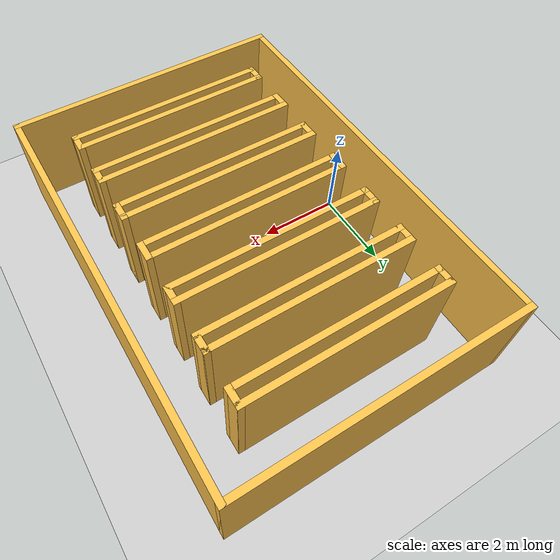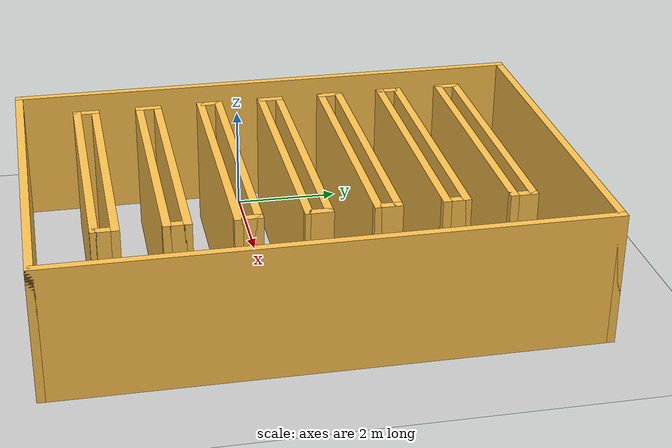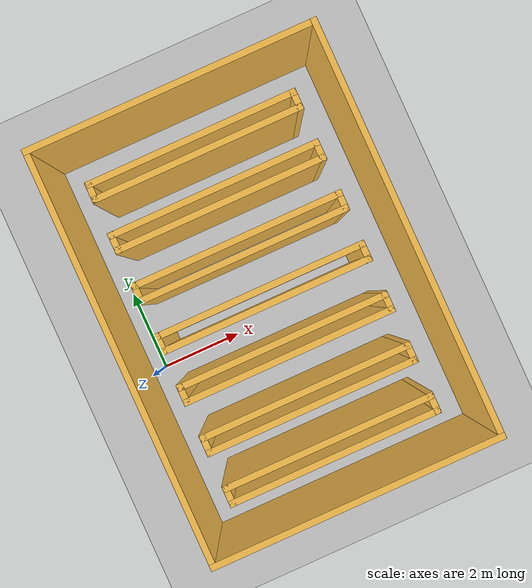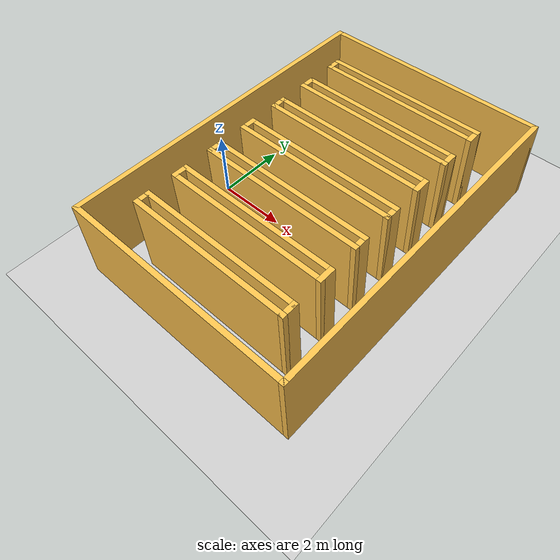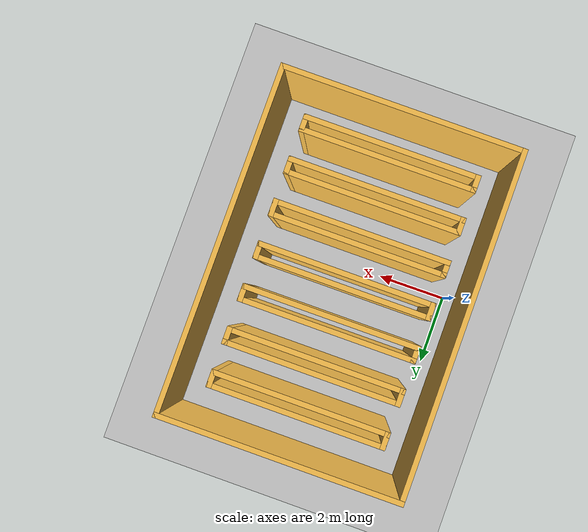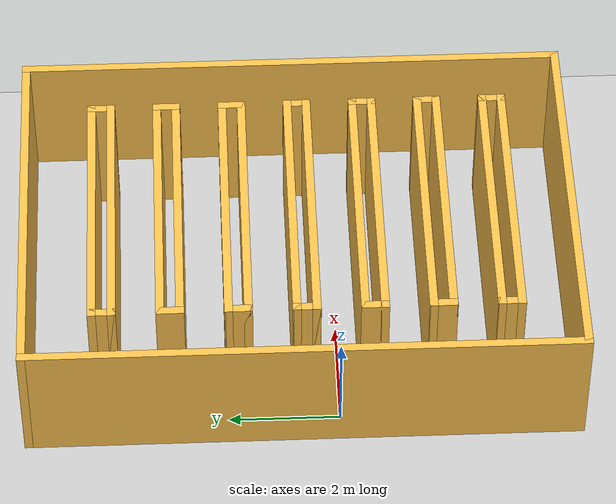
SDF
<sdf version="1.7">
 <world name="default">
  <light name="sun" type="directional">
   <pose>0 0 10 0 -0 0</pose>
   <diffuse>0.8 0.8 0.8 1</diffuse>
   <specular>0.2 0.2 0.2 1</specular>
   <attenuation>
    <range>1000</range>
    <constant>0.9</constant>
    <linear>0.01</linear>
    <quadratic>0.001</quadratic>
   </attenuation>
   <direction>-0.5 0.1 -0.9</direction>
   <spot><inner_angle>0</inner_angle><outer_angle>0</outer_angle><falloff>0</falloff></spot>
  </light>
  <model name="ground_plane">
   <static>1</static>
   <link name="link">
    <collision name="collision">
     <geometry><plane><normal>0 0 1</normal><size>100 100</size></plane></geometry>
     <surface><friction><ode><mu>100</mu><mu2>50</mu2></ode></friction></surface>
    </collision>
    <visual name="visual">
     <cast_shadows>0</cast_shadows>
     <geometry><plane><normal>0 0 1</normal><size>100 100</size></plane></geometry>
     <material>
      <script><uri>file://media/materials/scripts/gazebo.material</uri><name>Gazebo/Grey</name></script>
     </material>
    </visual>
   </link>
  </model>
  <gravity>0 0 -9.8</gravity>
  <magnetic_field>6e-06 2.3e-05 -4.2e-05</magnetic_field>
  <atmosphere type="adiabatic"/>
  <physics type="ode">
   <max_step_size>0.001</max_step_size>
   <real_time_factor>1</real_time_factor>
   <real_time_update_rate>1000</real_time_update_rate>
  </physics>
  <scene><ambient>0.4 0.4 0.4 1</ambient><background>0.7 0.7 0.7 1</background><shadows>1</shadows></scene>
  <spherical_coordinates>
   <surface_model>EARTH_WGS84</surface_model>
   <latitude_deg>0</latitude_deg>
   <longitude_deg>0</longitude_deg>
   <elevation>0</elevation>
   <heading_deg>0</heading_deg>
  </spherical_coordinates>
  <model name="Simple_house">
   <pose>2.85 0.65 0 0 -0 1.57079</pose>
   <link name="Wall_10">
    <collision name="Wall_10_Collision">
     <geometry><box><size>7 0.15 2.5</size></box></geometry>
     <pose>0 0 1.25 0 -0 0</pose>
    </collision>
    <visual name="Wall_10_Visual">
     <pose>0 0 1.25 0 -0 0</pose>
     <geometry><box><size>7 0.15 2.5</size></box></geometry>
     <material>
      <script><uri>file://media/materials/scripts/gazebo.material</uri><name>Gazebo/Grey</name></script>
      <ambient>1 0.764706 0.305882 1</ambient>
     </material>
     <meta><layer>0</layer></meta>
    </visual>
    <pose>-4.925 -0.16685 0 0 -0 1.5708</pose>
   </link>
   <link name="Wall_17">
    <collision name="Wall_17_Collision">
     <geometry><box><size>10 0.15 2.5</size></box></geometry>
     <pose>0 0 1.25 0 -0 0</pose>
    </collision>
    <visual name="Wall_17_Visual">
     <pose>0 0 1.25 0 -0 0</pose>
     <geometry><box><size>10 0.15 2.5</size></box></geometry>
     <material>
      <script><uri>file://media/materials/scripts/gazebo.material</uri><name>Gazebo/Grey</name></script>
      <ambient>1 0.764706 0.305882 1</ambient>
     </material>
     <meta><layer>0</layer></meta>
    </visual>
    <pose>0 -3.59185 0 0 -0 0</pose>
   </link>
   <link name="Wall_18">
    <collision name="Wall_18_Collision">
     <geometry><box><size>7 0.15 2.5</size></box></geometry>
     <pose>0 0 1.25 0 -0 0</pose>
    </collision>
    <visual name="Wall_18_Visual">
     <pose>0 0 1.25 0 -0 0</pose>
     <geometry><box><size>7 0.15 2.5</size></box></geometry>
     <material>
      <script><uri>file://media/materials/scripts/gazebo.material</uri><name>Gazebo/Grey</name></script>
      <ambient>1 0.764706 0.305882 1</ambient>
     </material>
     <meta><layer>0</layer></meta>
    </visual>
    <pose>4.925 -0.16685 0 0 -0 1.5708</pose>
   </link>
   <link name="Wall_19">
    <collision name="Wall_19_Collision">
     <geometry><box><size>10 0.15 2.5</size></box></geometry>
     <pose>0 0 1.25 0 -0 0</pose>
    </collision>
    <visual name="Wall_19_Visual">
     <pose>0 0 1.25 0 -0 0</pose>
     <geometry><box><size>10 0.15 2.5</size></box></geometry>
     <material>
      <script><uri>file://media/materials/scripts/gazebo.material</uri><name>Gazebo/Grey</name></script>
      <ambient>1 0.764706 0.305882 1</ambient>
     </material>
     <meta><layer>0</layer></meta>
    </visual>
    <pose>0 3.25815 0 0 -0 3.14159</pose>
   </link>
   <link name="Wall_27">
    <collision name="Wall_27_Collision">
     <geometry><box><size>5 0.15 2.5</size></box></geometry>
     <pose>0 0 1.25 0 -0 0</pose>
    </collision>
    <visual name="Wall_27_Visual">
     <pose>0 0 1.25 0 -0 0</pose>
     <geometry><box><size>5 0.15 2.5</size></box></geometry>
     <material>
      <script><uri>file://media/materials/scripts/gazebo.material</uri><name>Gazebo/Grey</name></script>
      <ambient>1 0.764706 0.305882 1</ambient>
     </material>
     <meta><layer>0</layer></meta>
    </visual>
    <pose>3.70907 -0.11251 0 0 -0 -1.5708</pose>
   </link>
   <link name="Wall_28">
    <collision name="Wall_28_Collision">
     <geometry><box><size>0.5 0.15 2.5</size></box></geometry>
     <pose>0 0 1.25 0 -0 0</pose>
    </collision>
    <visual name="Wall_28_Visual">
     <pose>0 0 1.25 0 -0 0</pose>
     <geometry><box><size>0.5 0.15 2.5</size></box></geometry>
     <material>
      <script><uri>file://media/materials/scripts/gazebo.material</uri><name>Gazebo/Grey</name></script>
      <ambient>1 0.764706 0.305882 1</ambient>
     </material>
     <meta><layer>0</layer></meta>
    </visual>
    <pose>3.53407 -2.53751 0 0 -0 3.14159</pose>
   </link>
   <link name="Wall_29">
    <collision name="Wall_29_Collision">
     <geometry><box><size>5 0.15 2.5</size></box></geometry>
     <pose>0 0 1.25 0 -0 0</pose>
    </collision>
    <visual name="Wall_29_Visual">
     <pose>0 0 1.25 0 -0 0</pose>
     <geometry><box><size>5 0.15 2.5</size></box></geometry>
     <material>
      <script><uri>file://media/materials/scripts/gazebo.material</uri><name>Gazebo/Grey</name></script>
      <ambient>1 0.764706 0.305882 1</ambient>
     </material>
     <meta><layer>0</layer></meta>
    </visual>
    <pose>3.35907 -0.11251 0 0 -0 1.5708</pose>
   </link>
   <link name="Wall_31">
    <collision name="Wall_31_Collision">
     <geometry><box><size>0.5 0.15 2.5</size></box></geometry>
     <pose>0 0 1.25 0 -0 0</pose>
    </collision>
    <visual name="Wall_31_Visual">
     <pose>0 0 1.25 0 -0 0</pose>
     <geometry><box><size>0.5 0.15 2.5</size></box></geometry>
     <material>
      <script><uri>file://media/materials/scripts/gazebo.material</uri><name>Gazebo/Grey</name></script>
      <ambient>1 0.764706 0.305882 1</ambient>
     </material>
     <meta><layer>0</layer></meta>
    </visual>
    <pose>3.53407 2.31249 0 0 -0 3.14159</pose>
   </link>
   <link name="Wall_33">
    <collision name="Wall_33_Collision">
     <geometry><box><size>5 0.15 2.5</size></box></geometry>
     <pose>0 0 1.25 0 -0 0</pose>
    </collision>
    <visual name="Wall_33_Visual">
     <pose>0 0 1.25 0 -0 0</pose>
     <geometry><box><size>5 0.15 2.5</size></box></geometry>
     <material>
      <script><uri>file://media/materials/scripts/gazebo.material</uri><name>Gazebo/Grey</name></script>
      <ambient>1 0.764706 0.305882 1</ambient>
     </material>
     <meta><layer>0</layer></meta>
    </visual>
    <pose>2.50907 -0.11251 0 0 -0 -1.5708</pose>
   </link>
   <link name="Wall_34">
    <collision name="Wall_34_Collision">
     <geometry><box><size>0.5 0.15 2.5</size></box></geometry>
     <pose>0 0 1.25 0 -0 0</pose>
    </collision>
    <visual name="Wall_34_Visual">
     <pose>0 0 1.25 0 -0 0</pose>
     <geometry><box><size>0.5 0.15 2.5</size></box></geometry>
     <material>
      <script><uri>file://media/materials/scripts/gazebo.material</uri><name>Gazebo/Grey</name></script>
      <ambient>1 0.764706 0.305882 1</ambient>
     </material>
     <meta><layer>0</layer></meta>
    </visual>
    <pose>2.33407 -2.53751 0 0 -0 3.14159</pose>
   </link>
   <link name="Wall_35">
    <collision name="Wall_35_Collision">
     <geometry><box><size>5 0.15 2.5</size></box></geometry>
     <pose>0 0 1.25 0 -0 0</pose>
    </collision>
    <visual name="Wall_35_Visual">
     <pose>0 0 1.25 0 -0 0</pose>
     <geometry><box><size>5 0.15 2.5</size></box></geometry>
     <material>
      <script><uri>file://media/materials/scripts/gazebo.material</uri><name>Gazebo/Grey</name></script>
      <ambient>1 0.764706 0.305882 1</ambient>
     </material>
     <meta><layer>0</layer></meta>
    </visual>
    <pose>2.15907 -0.11251 0 0 -0 1.5708</pose>
   </link>
   <link name="Wall_36">
    <collision name="Wall_36_Collision">
     <geometry><box><size>0.5 0.15 2.5</size></box></geometry>
     <pose>0 0 1.25 0 -0 0</pose>
    </collision>
    <visual name="Wall_36_Visual">
     <pose>0 0 1.25 0 -0 0</pose>
     <geometry><box><size>0.5 0.15 2.5</size></box></geometry>
     <material>
      <script><uri>file://media/materials/scripts/gazebo.material</uri><name>Gazebo/Grey</name></script>
      <ambient>1 0.764706 0.305882 1</ambient>
     </material>
     <meta><layer>0</layer></meta>
    </visual>
    <pose>2.33407 2.31249 0 0 -0 0</pose>
   </link>
   <link name="Wall_39">
    <collision name="Wall_39_Collision">
     <geometry><box><size>5 0.15 2.5</size></box></geometry>
     <pose>0 0 1.25 0 -0 0</pose>
    </collision>
    <visual name="Wall_39_Visual">
     <pose>0 0 1.25 0 -0 0</pose>
     <geometry><box><size>5 0.15 2.5</size></box></geometry>
     <material>
      <script><uri>file://media/materials/scripts/gazebo.material</uri><name>Gazebo/Grey</name></script>
      <ambient>1 0.764706 0.305882 1</ambient>
     </material>
     <meta><layer>0</layer></meta>
    </visual>
    <pose>1.30907 -0.11251 0 0 -0 -1.5708</pose>
   </link>
   <link name="Wall_40">
    <collision name="Wall_40_Collision">
     <geometry><box><size>0.5 0.15 2.5</size></box></geometry>
     <pose>0 0 1.25 0 -0 0</pose>
    </collision>
    <visual name="Wall_40_Visual">
     <pose>0 0 1.25 0 -0 0</pose>
     <geometry><box><size>0.5 0.15 2.5</size></box></geometry>
     <material>
      <script><uri>file://media/materials/scripts/gazebo.material</uri><name>Gazebo/Grey</name></script>
      <ambient>1 0.764706 0.305882 1</ambient>
     </material>
     <meta><layer>0</layer></meta>
    </visual>
    <pose>1.13407 -2.53751 0 0 -0 3.14159</pose>
   </link>
   <link name="Wall_41">
    <collision name="Wall_41_Collision">
     <geometry><box><size>5 0.15 2.5</size></box></geometry>
     <pose>0 0 1.25 0 -0 0</pose>
    </collision>
    <visual name="Wall_41_Visual">
     <pose>0 0 1.25 0 -0 0</pose>
     <geometry><box><size>5 0.15 2.5</size></box></geometry>
     <material>
      <script><uri>file://media/materials/scripts/gazebo.material</uri><name>Gazebo/Grey</name></script>
      <ambient>1 0.764706 0.305882 1</ambient>
     </material>
     <meta><layer>0</layer></meta>
    </visual>
    <pose>0.95907 -0.11251 0 0 -0 1.5708</pose>
   </link>
   <link name="Wall_42">
    <collision name="Wall_42_Collision">
     <geometry><box><size>0.5 0.15 2.5</size></box></geometry>
     <pose>0 0 1.25 0 -0 0</pose>
    </collision>
    <visual name="Wall_42_Visual">
     <pose>0 0 1.25 0 -0 0</pose>
     <geometry><box><size>0.5 0.15 2.5</size></box></geometry>
     <material>
      <script><uri>file://media/materials/scripts/gazebo.material</uri><name>Gazebo/Grey</name></script>
      <ambient>1 0.764706 0.305882 1</ambient>
     </material>
     <meta><layer>0</layer></meta>
    </visual>
    <pose>1.13407 2.31249 0 0 -0 0</pose>
   </link>
   <link name="Wall_45">
    <collision name="Wall_45_Collision">
     <geometry><box><size>5 0.15 2.5</size></box></geometry>
     <pose>0 0 1.25 0 -0 0</pose>
    </collision>
    <visual name="Wall_45_Visual">
     <pose>0 0 1.25 0 -0 0</pose>
     <geometry><box><size>5 0.15 2.5</size></box></geometry>
     <material>
      <script><uri>file://media/materials/scripts/gazebo.material</uri><name>Gazebo/Grey</name></script>
      <ambient>1 0.764706 0.305882 1</ambient>
     </material>
     <meta><layer>0</layer></meta>
    </visual>
    <pose>0.10907 -0.11251 0 0 -0 -1.5708</pose>
   </link>
   <link name="Wall_49">
    <collision name="Wall_49_Collision">
     <geometry><box><size>0.5 0.15 2.5</size></box></geometry>
     <pose>0 0 1.25 0 -0 0</pose>
    </collision>
    <visual name="Wall_49_Visual">
     <pose>0 0 1.25 0 -0 0</pose>
     <geometry><box><size>0.5 0.15 2.5</size></box></geometry>
     <material>
      <script><uri>file://media/materials/scripts/gazebo.material</uri><name>Gazebo/Grey</name></script>
      <ambient>1 0.764706 0.305882 1</ambient>
     </material>
     <meta><layer>0</layer></meta>
    </visual>
    <pose>-0.06593 -2.53751 0 0 -0 3.14159</pose>
   </link>
   <link name="Wall_50">
    <collision name="Wall_50_Collision">
     <geometry><box><size>5 0.15 2.5</size></box></geometry>
     <pose>0 0 1.25 0 -0 0</pose>
    </collision>
    <visual name="Wall_50_Visual">
     <pose>0 0 1.25 0 -0 0</pose>
     <geometry><box><size>5 0.15 2.5</size></box></geometry>
     <material>
      <script><uri>file://media/materials/scripts/gazebo.material</uri><name>Gazebo/Grey</name></script>
      <ambient>1 0.764706 0.305882 1</ambient>
     </material>
     <meta><layer>0</layer></meta>
    </visual>
    <pose>-0.24093 -0.11251 0 0 -0 1.5708</pose>
   </link>
   <link name="Wall_51">
    <collision name="Wall_51_Collision">
     <geometry><box><size>0.5 0.15 2.5</size></box></geometry>
     <pose>0 0 1.25 0 -0 0</pose>
    </collision>
    <visual name="Wall_51_Visual">
     <pose>0 0 1.25 0 -0 0</pose>
     <geometry><box><size>0.5 0.15 2.5</size></box></geometry>
     <material>
      <script><uri>file://media/materials/scripts/gazebo.material</uri><name>Gazebo/Grey</name></script>
      <ambient>1 0.764706 0.305882 1</ambient>
     </material>
     <meta><layer>0</layer></meta>
    </visual>
    <pose>-0.06593 2.31249 0 0 -0 0</pose>
   </link>
   <link name="Wall_54">
    <collision name="Wall_54_Collision">
     <geometry><box><size>5 0.15 2.5</size></box></geometry>
     <pose>0 0 1.25 0 -0 0</pose>
    </collision>
    <visual name="Wall_54_Visual">
     <pose>0 0 1.25 0 -0 0</pose>
     <geometry><box><size>5 0.15 2.5</size></box></geometry>
     <material>
      <script><uri>file://media/materials/scripts/gazebo.material</uri><name>Gazebo/Grey</name></script>
      <ambient>1 0.764706 0.305882 1</ambient>
     </material>
     <meta><layer>0</layer></meta>
    </visual>
    <pose>-1.09093 -0.11251 0 0 -0 -1.5708</pose>
   </link>
   <link name="Wall_55">
    <collision name="Wall_55_Collision">
     <geometry><box><size>0.5 0.15 2.5</size></box></geometry>
     <pose>0 0 1.25 0 -0 0</pose>
    </collision>
    <visual name="Wall_55_Visual">
     <pose>0 0 1.25 0 -0 0</pose>
     <geometry><box><size>0.5 0.15 2.5</size></box></geometry>
     <material>
      <script><uri>file://media/materials/scripts/gazebo.material</uri><name>Gazebo/Grey</name></script>
      <ambient>1 0.764706 0.305882 1</ambient>
     </material>
     <meta><layer>0</layer></meta>
    </visual>
    <pose>-1.26593 -2.53751 0 0 -0 3.14159</pose>
   </link>
   <link name="Wall_56">
    <collision name="Wall_56_Collision">
     <geometry><box><size>5 0.15 2.5</size></box></geometry>
     <pose>0 0 1.25 0 -0 0</pose>
    </collision>
    <visual name="Wall_56_Visual">
     <pose>0 0 1.25 0 -0 0</pose>
     <geometry><box><size>5 0.15 2.5</size></box></geometry>
     <material>
      <script><uri>file://media/materials/scripts/gazebo.material</uri><name>Gazebo/Grey</name></script>
      <ambient>1 0.764706 0.305882 1</ambient>
     </material>
     <meta><layer>0</layer></meta>
    </visual>
    <pose>-1.44093 -0.11251 0 0 -0 1.5708</pose>
   </link>
   <link name="Wall_57">
    <collision name="Wall_57_Collision">
     <geometry><box><size>0.5 0.15 2.5</size></box></geometry>
     <pose>0 0 1.25 0 -0 0</pose>
    </collision>
    <visual name="Wall_57_Visual">
     <pose>0 0 1.25 0 -0 0</pose>
     <geometry><box><size>0.5 0.15 2.5</size></box></geometry>
     <material>
      <script><uri>file://media/materials/scripts/gazebo.material</uri><name>Gazebo/Grey</name></script>
      <ambient>1 0.764706 0.305882 1</ambient>
     </material>
     <meta><layer>0</layer></meta>
    </visual>
    <pose>-1.26593 2.31249 0 0 -0 0</pose>
   </link>
   <link name="Wall_60">
    <collision name="Wall_60_Collision">
     <geometry><box><size>5 0.15 2.5</size></box></geometry>
     <pose>0 0 1.25 0 -0 0</pose>
    </collision>
    <visual name="Wall_60_Visual">
     <pose>0 0 1.25 0 -0 0</pose>
     <geometry><box><size>5 0.15 2.5</size></box></geometry>
     <material>
      <script><uri>file://media/materials/scripts/gazebo.material</uri><name>Gazebo/Grey</name></script>
      <ambient>1 0.764706 0.305882 1</ambient>
     </material>
     <meta><layer>0</layer></meta>
    </visual>
    <pose>-2.29093 -0.11251 0 0 -0 -1.5708</pose>
   </link>
   <link name="Wall_61">
    <collision name="Wall_61_Collision">
     <geometry><box><size>0.5 0.15 2.5</size></box></geometry>
     <pose>0 0 1.25 0 -0 0</pose>
    </collision>
    <visual name="Wall_61_Visual">
     <pose>0 0 1.25 0 -0 0</pose>
     <geometry><box><size>0.5 0.15 2.5</size></box></geometry>
     <material>
      <script><uri>file://media/materials/scripts/gazebo.material</uri><name>Gazebo/Grey</name></script>
      <ambient>1 0.764706 0.305882 1</ambient>
     </material>
     <meta><layer>0</layer></meta>
    </visual>
    <pose>-2.46593 -2.53751 0 0 -0 3.14159</pose>
   </link>
   <link name="Wall_62">
    <collision name="Wall_62_Collision">
     <geometry><box><size>5 0.15 2.5</size></box></geometry>
     <pose>0 0 1.25 0 -0 0</pose>
    </collision>
    <visual name="Wall_62_Visual">
     <pose>0 0 1.25 0 -0 0</pose>
     <geometry><box><size>5 0.15 2.5</size></box></geometry>
     <material>
      <script><uri>file://media/materials/scripts/gazebo.material</uri><name>Gazebo/Grey</name></script>
      <ambient>1 0.764706 0.305882 1</ambient>
     </material>
     <meta><layer>0</layer></meta>
    </visual>
    <pose>-2.64093 -0.11251 0 0 -0 1.5708</pose>
   </link>
   <link name="Wall_63">
    <collision name="Wall_63_Collision">
     <geometry><box><size>0.5 0.15 2.5</size></box></geometry>
     <pose>0 0 1.25 0 -0 0</pose>
    </collision>
    <visual name="Wall_63_Visual">
     <pose>0 0 1.25 0 -0 0</pose>
     <geometry><box><size>0.5 0.15 2.5</size></box></geometry>
     <material>
      <script><uri>file://media/materials/scripts/gazebo.material</uri><name>Gazebo/Grey</name></script>
      <ambient>1 0.764706 0.305882 1</ambient>
     </material>
     <meta><layer>0</layer></meta>
    </visual>
    <pose>-2.46593 2.31249 0 0 -0 0</pose>
   </link>
   <link name="Wall_66">
    <collision name="Wall_66_Collision">
     <geometry><box><size>5 0.15 2.5</size></box></geometry>
     <pose>0 0 1.25 0 -0 0</pose>
    </collision>
    <visual name="Wall_66_Visual">
     <pose>0 0 1.25 0 -0 0</pose>
     <geometry><box><size>5 0.15 2.5</size></box></geometry>
     <material>
      <script><uri>file://media/materials/scripts/gazebo.material</uri><name>Gazebo/Grey</name></script>
      <ambient>1 0.764706 0.305882 1</ambient>
     </material>
     <meta><layer>0</layer></meta>
    </visual>
    <pose>-3.49093 -0.11251 0 0 -0 -1.5708</pose>
   </link>
   <link name="Wall_67">
    <collision name="Wall_67_Collision">
     <geometry><box><size>0.5 0.15 2.5</size></box></geometry>
     <pose>0 0 1.25 0 -0 0</pose>
    </collision>
    <visual name="Wall_67_Visual">
     <pose>0 0 1.25 0 -0 0</pose>
     <geometry><box><size>0.5 0.15 2.5</size></box></geometry>
     <material>
      <script><uri>file://media/materials/scripts/gazebo.material</uri><name>Gazebo/Grey</name></script>
      <ambient>1 0.764706 0.305882 1</ambient>
     </material>
     <meta><layer>0</layer></meta>
    </visual>
    <pose>-3.66593 -2.53751 0 0 -0 3.14159</pose>
   </link>
   <link name="Wall_68">
    <collision name="Wall_68_Collision">
     <geometry><box><size>5 0.15 2.5</size></box></geometry>
     <pose>0 0 1.25 0 -0 0</pose>
    </collision>
    <visual name="Wall_68_Visual">
     <pose>0 0 1.25 0 -0 0</pose>
     <geometry><box><size>5 0.15 2.5</size></box></geometry>
     <material>
      <script><uri>file://media/materials/scripts/gazebo.material</uri><name>Gazebo/Grey</name></script>
      <ambient>1 0.764706 0.305882 1</ambient>
     </material>
     <meta><layer>0</layer></meta>
    </visual>
    <pose>-3.84093 -0.11251 0 0 -0 1.5708</pose>
   </link>
   <link name="Wall_69">
    <collision name="Wall_69_Collision">
     <geometry><box><size>0.5 0.15 2.5</size></box></geometry>
     <pose>0 0 1.25 0 -0 0</pose>
    </collision>
    <visual name="Wall_69_Visual">
     <pose>0 0 1.25 0 -0 0</pose>
     <geometry><box><size>0.5 0.15 2.5</size></box></geometry>
     <material>
      <script><uri>file://media/materials/scripts/gazebo.material</uri><name>Gazebo/Grey</name></script>
      <ambient>1 0.764706 0.305882 1</ambient>
     </material>
     <meta><layer>0</layer></meta>
    </visual>
    <pose>-3.66593 2.31249 0 0 -0 0</pose>
   </link>
   <static>1</static>
  </model>
 </world>
</sdf>
